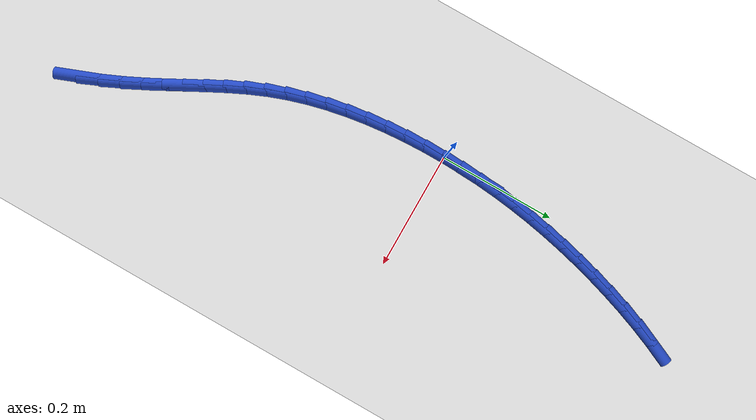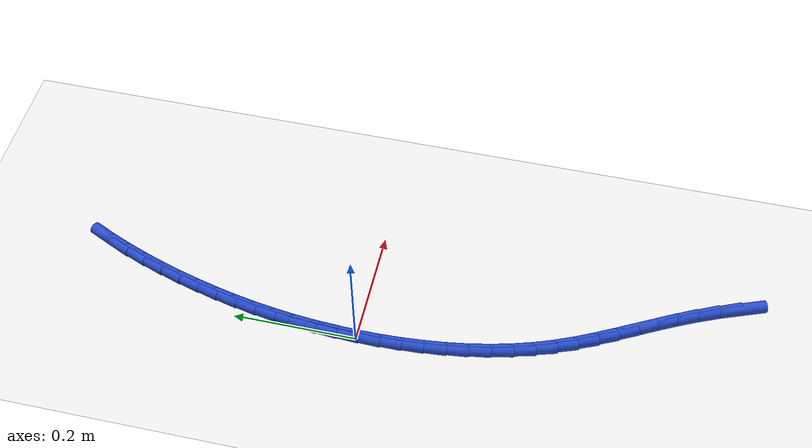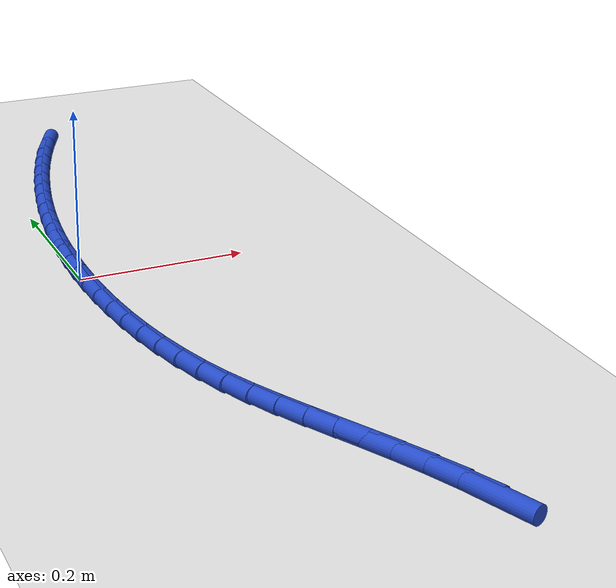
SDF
<sdf version="1.6">
 <world name="default">
  <model name="ground_plane">
   <static>1</static>
   <link name="link">
    <collision name="collision">
     <geometry><plane><normal>0 0 1</normal><size>100 100</size></plane></geometry>
     <surface><friction><ode><mu>100</mu><mu2>50</mu2></ode></friction></surface>
    </collision>
    <visual name="visual">
     <cast_shadows>0</cast_shadows>
     <geometry><plane><normal>0 0 1</normal><size>100 100</size></plane></geometry>
     <material>
      <script><uri>file://media/materials/scripts/gazebo.material</uri><name>Gazebo/WhiteGlow</name></script>
     </material>
    </visual>
   </link>
  </model>
  <model name="line">
   <link name="link_0">
    <pose>6.938893903907228e-18 -2.0816681711721685e-17 0.01 0 1.57 1.5395726803142173</pose>
    <collision name="collision">
     <geometry><cylinder><radius>0.01</radius><length>0.08</length></cylinder></geometry>
    </collision>
    <visual name="visual">
     <material>
      <script><name>Gazebo/Blue</name><uri>file://media/materials/scripts/gazebo.material</uri></script>
     </material>
     <geometry><cylinder><radius>0.01</radius><length>0.08</length></cylinder></geometry>
    </visual>
   </link>
   <link name="link_1">
    <pose>0.0010787189975619287 0.034536914896765615 0.01 0 1.57 1.5081255866504448</pose>
    <collision name="collision">
     <geometry><cylinder><radius>0.01</radius><length>0.08</length></cylinder></geometry>
    </collision>
    <visual name="visual">
     <material>
      <script><name>Gazebo/Blue</name><uri>file://media/materials/scripts/gazebo.material</uri></script>
     </material>
     <geometry><cylinder><radius>0.01</radius><length>0.08</length></cylinder></geometry>
    </visual>
   </link>
   <link name="link_2">
    <pose>0.003230668482445049 0.06882933579597644 0.01 0 1.57 1.4767746153901073</pose>
    <collision name="collision">
     <geometry><cylinder><radius>0.01</radius><length>0.08</length></cylinder></geometry>
    </collision>
    <visual name="visual">
     <material>
      <script><name>Gazebo/Blue</name><uri>file://media/materials/scripts/gazebo.material</uri></script>
     </material>
     <geometry><cylinder><radius>0.01</radius><length>0.08</length></cylinder></geometry>
    </visual>
   </link>
   <link name="link_3">
    <pose>0.006444871872062578 0.10291429852605796 0.01 0 1.57 1.445681829038593</pose>
    <collision name="collision">
     <geometry><cylinder><radius>0.01</radius><length>0.08</length></cylinder></geometry>
    </collision>
    <visual name="visual">
     <material>
      <script><name>Gazebo/Blue</name><uri>file://media/materials/scripts/gazebo.material</uri></script>
     </material>
     <geometry><cylinder><radius>0.01</radius><length>0.08</length></cylinder></geometry>
    </visual>
   </link>
   <link name="link_4">
    <pose>0.010710352583827732 0.1368288389154358 0.01 0 1.57 1.4150057100489364</pose>
    <collision name="collision">
     <geometry><cylinder><radius>0.01</radius><length>0.08</length></cylinder></geometry>
    </collision>
    <visual name="visual">
     <material>
      <script><name>Gazebo/Blue</name><uri>file://media/materials/scripts/gazebo.material</uri></script>
     </material>
     <geometry><cylinder><radius>0.01</radius><length>0.08</length></cylinder></geometry>
    </visual>
   </link>
   <link name="link_5">
    <pose>0.01601613403515372 0.1706099927925355 0.01 0 1.57 1.3848976582385846</pose>
    <collision name="collision">
     <geometry><cylinder><radius>0.01</radius><length>0.08</length></cylinder></geometry>
    </collision>
    <visual name="visual">
     <material>
      <script><name>Gazebo/Blue</name><uri>file://media/materials/scripts/gazebo.material</uri></script>
     </material>
     <geometry><cylinder><radius>0.01</radius><length>0.08</length></cylinder></geometry>
    </visual>
   </link>
   <link name="link_6">
    <pose>0.022351239643453754 0.2042947959857826 0.01 0 1.57 1.3554988640223344</pose>
    <collision name="collision">
     <geometry><cylinder><radius>0.01</radius><length>0.08</length></cylinder></geometry>
    </collision>
    <visual name="visual">
     <material>
      <script><name>Gazebo/Blue</name><uri>file://media/materials/scripts/gazebo.material</uri></script>
     </material>
     <geometry><cylinder><radius>0.01</radius><length>0.08</length></cylinder></geometry>
    </visual>
   </link>
   <link name="link_7">
    <pose>0.029704692826141056 0.23792028432360263 0.01 0 1.57 1.3269377060092435</pose>
    <collision name="collision">
     <geometry><cylinder><radius>0.01</radius><length>0.08</length></cylinder></geometry>
    </collision>
    <visual name="visual">
     <material>
      <script><name>Gazebo/Blue</name><uri>file://media/materials/scripts/gazebo.material</uri></script>
     </material>
     <geometry><cylinder><radius>0.01</radius><length>0.08</length></cylinder></geometry>
    </visual>
   </link>
   <link name="link_8">
    <pose>0.03806551700062881 0.27152349363442113 0.01 0 1.57 1.2993137629737328</pose>
    <collision name="collision">
     <geometry><cylinder><radius>0.01</radius><length>0.08</length></cylinder></geometry>
    </collision>
    <visual name="visual">
     <material>
      <script><name>Gazebo/Blue</name><uri>file://media/materials/scripts/gazebo.material</uri></script>
     </material>
     <geometry><cylinder><radius>0.01</radius><length>0.08</length></cylinder></geometry>
    </visual>
   </link>
   <link name="link_9">
    <pose>0.047423001072118345 0.30514059047941017 0.01 0 1.57 1.2716792525355325</pose>
    <collision name="collision">
     <geometry><cylinder><radius>0.01</radius><length>0.08</length></cylinder></geometry>
    </collision>
    <visual name="visual">
     <material>
      <script><name>Gazebo/Blue</name><uri>file://media/materials/scripts/gazebo.material</uri></script>
     </material>
     <geometry><cylinder><radius>0.01</radius><length>0.08</length></cylinder></geometry>
    </visual>
   </link>
   <link name="link_10">
    <pose>0.05778557948021809 0.33874505459624127 0.01 0 1.57 1.2422311300721802</pose>
    <collision name="collision">
     <geometry><cylinder><radius>0.01</radius><length>0.08</length></cylinder></geometry>
    </collision>
    <visual name="visual">
     <material>
      <script><name>Gazebo/Blue</name><uri>file://media/materials/scripts/gazebo.material</uri></script>
     </material>
     <geometry><cylinder><radius>0.01</radius><length>0.08</length></cylinder></geometry>
    </visual>
   </link>
   <link name="link_11">
    <pose>0.069193376139893 0.3722066071903751 0.01 0 1.57 1.2105960277250443</pose>
    <collision name="collision">
     <geometry><cylinder><radius>0.01</radius><length>0.08</length></cylinder></geometry>
    </collision>
    <visual name="visual">
     <material>
      <script><name>Gazebo/Blue</name><uri>file://media/materials/scripts/gazebo.material</uri></script>
     </material>
     <geometry><cylinder><radius>0.01</radius><length>0.08</length></cylinder></geometry>
    </visual>
   </link>
   <link name="link_12">
    <pose>0.08168949071407883 0.4053852261932598 0.01 0 1.57 1.1765427783230729</pose>
    <collision name="collision">
     <geometry><cylinder><radius>0.01</radius><length>0.08</length></cylinder></geometry>
    </collision>
    <visual name="visual">
     <material>
      <script><name>Gazebo/Blue</name><uri>file://media/materials/scripts/gazebo.material</uri></script>
     </material>
     <geometry><cylinder><radius>0.01</radius><length>0.08</length></cylinder></geometry>
    </visual>
   </link>
   <link name="link_13">
    <pose>0.09531702286571156 0.438140889536344 0.01 0 1.57 1.139826450582027</pose>
    <collision name="collision">
     <geometry><cylinder><radius>0.01</radius><length>0.08</length></cylinder></geometry>
    </collision>
    <visual name="visual">
     <material>
      <script><name>Gazebo/Blue</name><uri>file://media/materials/scripts/gazebo.material</uri></script>
     </material>
     <geometry><cylinder><radius>0.01</radius><length>0.08</length></cylinder></geometry>
    </visual>
   </link>
   <link name="link_192">
    <pose>0.1820009911345865 -0.5853389152712869 0.01 0 1.57 -1.2035828995958568</pose>
    <collision name="collision">
     <geometry><cylinder><radius>0.01</radius><length>0.08</length></cylinder></geometry>
    </collision>
    <visual name="visual">
     <material>
      <script><name>Gazebo/Blue</name><uri>file://media/materials/scripts/gazebo.material</uri></script>
     </material>
     <geometry><cylinder><radius>0.01</radius><length>0.08</length></cylinder></geometry>
    </visual>
   </link>
   <link name="link_193">
    <pose>0.16842837328740276 -0.5500542785533911 0.01 0 1.57 -1.1573537368337983</pose>
    <collision name="collision">
     <geometry><cylinder><radius>0.01</radius><length>0.08</length></cylinder></geometry>
    </collision>
    <visual name="visual">
     <material>
      <script><name>Gazebo/Blue</name><uri>file://media/materials/scripts/gazebo.material</uri></script>
     </material>
     <geometry><cylinder><radius>0.01</radius><length>0.08</length></cylinder></geometry>
    </visual>
   </link>
   <link name="link_194">
    <pose>0.1537432982425438 -0.516582516402253 0.01 0 1.57 -1.1200536513349049</pose>
    <collision name="collision">
     <geometry><cylinder><radius>0.01</radius><length>0.08</length></cylinder></geometry>
    </collision>
    <visual name="visual">
     <material>
      <script><name>Gazebo/Blue</name><uri>file://media/materials/scripts/gazebo.material</uri></script>
     </material>
     <geometry><cylinder><radius>0.01</radius><length>0.08</length></cylinder></geometry>
    </visual>
   </link>
   <link name="link_195">
    <pose>0.13826667955156138 -0.4846041397244933 0.01 0 1.57 -1.0941615930857238</pose>
    <collision name="collision">
     <geometry><cylinder><radius>0.01</radius><length>0.08</length></cylinder></geometry>
    </collision>
    <visual name="visual">
     <material>
      <script><name>Gazebo/Blue</name><uri>file://media/materials/scripts/gazebo.material</uri></script>
     </material>
     <geometry><cylinder><radius>0.01</radius><length>0.08</length></cylinder></geometry>
    </visual>
   </link>
   <link name="link_196">
    <pose>0.12234382374231817 -0.4537662674687499 0.01 0 1.57 -1.0809170652315245</pose>
    <collision name="collision">
     <geometry><cylinder><radius>0.01</radius><length>0.08</length></cylinder></geometry>
    </collision>
    <visual name="visual">
     <material>
      <script><name>Gazebo/Blue</name><uri>file://media/materials/scripts/gazebo.material</uri></script>
     </material>
     <geometry><cylinder><radius>0.01</radius><length>0.08</length></cylinder></geometry>
    </visual>
   </link>
   <link name="link_197">
    <pose>0.10632003734267807 -0.4237160185836627 0.01 0 1.57 -1.081247254166072</pose>
    <collision name="collision">
     <geometry><cylinder><radius>0.01</radius><length>0.08</length></cylinder></geometry>
    </collision>
    <visual name="visual">
     <material>
      <script><name>Gazebo/Blue</name><uri>file://media/materials/scripts/gazebo.material</uri></script>
     </material>
     <geometry><cylinder><radius>0.01</radius><length>0.08</length></cylinder></geometry>
    </visual>
   </link>
   <link name="link_198">
    <pose>0.0905406268805038 -0.39410051201786944 0.01 0 1.57 -1.0957588971895187</pose>
    <collision name="collision">
     <geometry><cylinder><radius>0.01</radius><length>0.08</length></cylinder></geometry>
    </collision>
    <visual name="visual">
     <material>
      <script><name>Gazebo/Blue</name><uri>file://media/materials/scripts/gazebo.material</uri></script>
     </material>
     <geometry><cylinder><radius>0.01</radius><length>0.08</length></cylinder></geometry>
    </visual>
   </link>
   <link name="link_199">
    <pose>0.0753508988836584 -0.36456686672000843 0.01 0 1.57 -1.124681658649452</pose>
    <collision name="collision">
     <geometry><cylinder><radius>0.01</radius><length>0.08</length></cylinder></geometry>
    </collision>
    <visual name="visual">
     <material>
      <script><name>Gazebo/Blue</name><uri>file://media/materials/scripts/gazebo.material</uri></script>
     </material>
     <geometry><cylinder><radius>0.01</radius><length>0.08</length></cylinder></geometry>
    </visual>
   </link>
   <link name="link_200">
    <pose>0.06109615988000496 -0.33476220163871817 0.01 0 1.57 -1.1677487242687958</pose>
    <collision name="collision">
     <geometry><cylinder><radius>0.01</radius><length>0.08</length></cylinder></geometry>
    </collision>
    <visual name="visual">
     <material>
      <script><name>Gazebo/Blue</name><uri>file://media/materials/scripts/gazebo.material</uri></script>
     </material>
     <geometry><cylinder><radius>0.01</radius><length>0.08</length></cylinder></geometry>
    </visual>
   </link>
   <link name="link_201">
    <pose>0.04812171639740661 -0.30433363572263716 0.01 0 1.57 -1.2230945453955722</pose>
    <collision name="collision">
     <geometry><cylinder><radius>0.01</radius><length>0.08</length></cylinder></geometry>
    </collision>
    <visual name="visual">
     <material>
      <script><name>Gazebo/Blue</name><uri>file://media/materials/scripts/gazebo.material</uri></script>
     </material>
     <geometry><cylinder><radius>0.01</radius><length>0.08</length></cylinder></geometry>
    </visual>
   </link>
   <link name="link_202">
    <pose>0.03674977007428657 -0.27295636364964604 0.01 0 1.57 -1.2796867338031301</pose>
    <collision name="collision">
     <geometry><cylinder><radius>0.01</radius><length>0.08</length></cylinder></geometry>
    </collision>
    <visual name="visual">
     <material>
      <script><name>Gazebo/Blue</name><uri>file://media/materials/scripts/gazebo.material</uri></script>
     </material>
     <geometry><cylinder><radius>0.01</radius><length>0.08</length></cylinder></geometry>
    </visual>
   </link>
   <link name="link_203">
    <pose>0.027056472872935926 -0.240604565474963 0.01 0 1.57 -1.331663244488773</pose>
    <collision name="collision">
     <geometry><cylinder><radius>0.01</radius><length>0.08</length></cylinder></geometry>
    </collision>
    <visual name="visual">
     <material>
      <script><name>Gazebo/Blue</name><uri>file://media/materials/scripts/gazebo.material</uri></script>
     </material>
     <geometry><cylinder><radius>0.01</radius><length>0.08</length></cylinder></geometry>
    </visual>
   </link>
   <link name="link_204">
    <pose>0.018969323220448014 -0.20743305645727864 0.01 0 1.57 -1.3794105067163198</pose>
    <collision name="collision">
     <geometry><cylinder><radius>0.01</radius><length>0.08</length></cylinder></geometry>
    </collision>
    <visual name="visual">
     <material>
      <script><name>Gazebo/Blue</name><uri>file://media/materials/scripts/gazebo.material</uri></script>
     </material>
     <geometry><cylinder><radius>0.01</radius><length>0.08</length></cylinder></geometry>
    </visual>
   </link>
   <link name="link_205">
    <pose>0.012413758191257881 -0.1735991566921619 0.01 0 1.57 -1.4233963108745242</pose>
    <collision name="collision">
     <geometry><cylinder><radius>0.01</radius><length>0.08</length></cylinder></geometry>
    </collision>
    <visual name="visual">
     <material>
      <script><name>Gazebo/Blue</name><uri>file://media/materials/scripts/gazebo.material</uri></script>
     </material>
     <geometry><cylinder><radius>0.01</radius><length>0.08</length></cylinder></geometry>
    </visual>
   </link>
   <link name="link_206">
    <pose>0.007315214859800553 -0.13926018627518155 0.01 0 1.57 -1.4640706251297053</pose>
    <collision name="collision">
     <geometry><cylinder><radius>0.01</radius><length>0.08</length></cylinder></geometry>
    </collision>
    <visual name="visual">
     <material>
      <script><name>Gazebo/Blue</name><uri>file://media/materials/scripts/gazebo.material</uri></script>
     </material>
     <geometry><cylinder><radius>0.01</radius><length>0.08</length></cylinder></geometry>
    </visual>
   </link>
   <link name="link_207">
    <pose>0.0035991303005110716 -0.10457346530190632 0.01 0 1.57 -1.5018579978960471</pose>
    <collision name="collision">
     <geometry><cylinder><radius>0.01</radius><length>0.08</length></cylinder></geometry>
    </collision>
    <visual name="visual">
     <material>
      <script><name>Gazebo/Blue</name><uri>file://media/materials/scripts/gazebo.material</uri></script>
     </material>
     <geometry><cylinder><radius>0.01</radius><length>0.08</length></cylinder></geometry>
    </visual>
   </link>
   <link name="link_208">
    <pose>0.0011909415878244606 -0.06969631386790512 0.01 0 1.57 -1.5371554287039222</pose>
    <collision name="collision">
     <geometry><cylinder><radius>0.01</radius><length>0.08</length></cylinder></geometry>
    </collision>
    <visual name="visual">
     <material>
      <script><name>Gazebo/Blue</name><uri>file://media/materials/scripts/gazebo.material</uri></script>
     </material>
     <geometry><cylinder><radius>0.01</radius><length>0.08</length></cylinder></geometry>
    </visual>
   </link>
   <link name="link_209">
    <pose>1.608579617574761e-05 -0.03478605206874588 0.01 0 1.57 -1.5703339059660715</pose>
    <collision name="collision">
     <geometry><cylinder><radius>0.01</radius><length>0.08</length></cylinder></geometry>
    </collision>
    <visual name="visual">
     <material>
      <script><name>Gazebo/Blue</name><uri>file://media/materials/scripts/gazebo.material</uri></script>
     </material>
     <geometry><cylinder><radius>0.01</radius><length>0.08</length></cylinder></geometry>
    </visual>
   </link>
   <link name="link_210">
    <pose>8.673617379884035e-18 1.6653345369377348e-16 0.01 0 1.57 1.5398502299774262</pose>
    <collision name="collision">
     <geometry><cylinder><radius>0.01</radius><length>0.08</length></cylinder></geometry>
    </collision>
    <visual name="visual">
     <material>
      <script><name>Gazebo/Blue</name><uri>file://media/materials/scripts/gazebo.material</uri></script>
     </material>
     <geometry><cylinder><radius>0.01</radius><length>0.08</length></cylinder></geometry>
    </visual>
   </link>
   <link name="link_211">
    <pose>0.001068121273732233 0.034504522242766636 0.01 0 1.57 1.509878855115217</pose>
    <collision name="collision">
     <geometry><cylinder><radius>0.01</radius><length>0.08</length></cylinder></geometry>
    </collision>
    <visual name="visual">
     <material>
      <script><name>Gazebo/Blue</name><uri>file://media/materials/scripts/gazebo.material</uri></script>
     </material>
     <geometry><cylinder><radius>0.01</radius><length>0.08</length></cylinder></geometry>
    </visual>
   </link>
   <link name="link_212">
    <pose>0.00314588669180759 0.0685701945639855 0.01 0 1.57 1.5249501349064791</pose>
    <collision name="collision">
     <geometry><cylinder><radius>0.01</radius><length>0.08</length></cylinder></geometry>
    </collision>
    <visual name="visual">
     <material>
      <script><name>Gazebo/Blue</name><uri>file://media/materials/scripts/gazebo.material</uri></script>
     </material>
     <geometry><cylinder><radius>0.01</radius><length>0.08</length></cylinder></geometry>
    </visual>
   </link>
  </model>
 </world>
</sdf>
